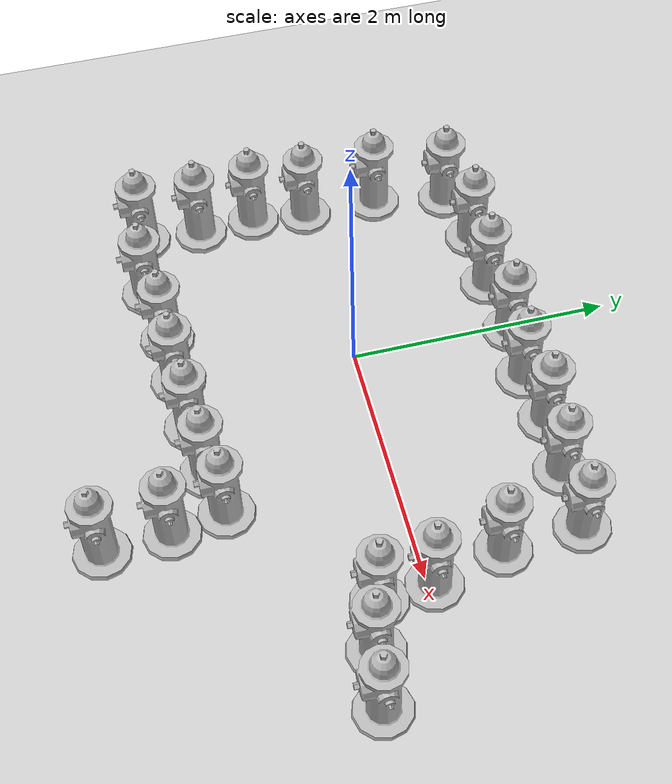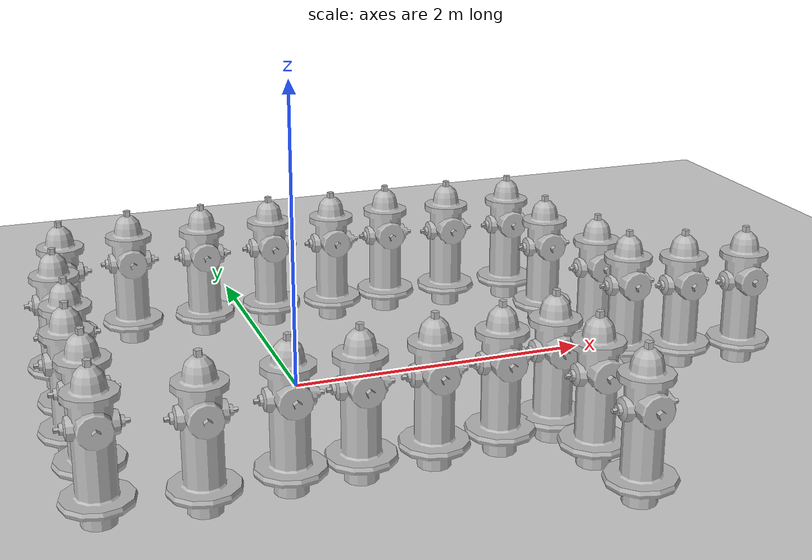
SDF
<sdf version="1.7">
 <world name="default">
  <light name="sun" type="directional">
   <pose>0 0 10 0 -0 0</pose>
   <diffuse>0.8 0.8 0.8 1</diffuse>
   <specular>0.2 0.2 0.2 1</specular>
   <attenuation>
    <range>1000</range>
    <constant>0.9</constant>
    <linear>0.01</linear>
    <quadratic>0.001</quadratic>
   </attenuation>
   <direction>-0.5 0.1 -0.9</direction>
   <spot><inner_angle>0</inner_angle><outer_angle>0</outer_angle><falloff>0</falloff></spot>
  </light>
  <model name="ground_plane">
   <static>1</static>
   <link name="link">
    <collision name="collision">
     <geometry><plane><normal>0 0 1</normal><size>100 100</size></plane></geometry>
     <surface>
      <contact><collide_bitmask>65535</collide_bitmask></contact>
      <friction><ode><mu>100</mu><mu2>50</mu2></ode></friction>
     </surface>
    </collision>
    <visual name="visual">
     <cast_shadows>0</cast_shadows>
     <geometry><plane><normal>0 0 1</normal><size>100 100</size></plane></geometry>
     <material>
      <script><uri>file://media/materials/scripts/gazebo.material</uri><name>Gazebo/Grey</name></script>
     </material>
    </visual>
   </link>
  </model>
  <gravity>0 0 -9.8</gravity>
  <magnetic_field>6e-06 2.3e-05 -4.2e-05</magnetic_field>
  <atmosphere type="adiabatic"/>
  <physics type="ode">
   <max_step_size>0.001</max_step_size>
   <real_time_factor>1</real_time_factor>
   <real_time_update_rate>1000</real_time_update_rate>
  </physics>
  <scene><ambient>0.4 0.4 0.4 1</ambient><background>0.7 0.7 0.7 1</background><shadows>1</shadows></scene>
  <spherical_coordinates>
   <surface_model>EARTH_WGS84</surface_model>
   <latitude_deg>0</latitude_deg>
   <longitude_deg>0</longitude_deg>
   <elevation>0</elevation>
   <heading_deg>0</heading_deg>
  </spherical_coordinates>
  <model name="fire_hydrant">
   <static>1</static>
   <link name="link">
    <collision name="collision">
     <geometry><mesh><uri>model://fire_hydrant/meshes/fire_hydrant.dae</uri></mesh></geometry>
    </collision>
    <visual name="visual">
     <geometry><mesh><uri>model://fire_hydrant/meshes/fire_hydrant.dae</uri></mesh></geometry>
    </visual>
   </link>
   <pose>-1.41925 0.520695 0 0 -0 0</pose>
  </model>
  <model name="fire_hydrant_clone">
   <static>1</static>
   <link name="link">
    <collision name="collision">
     <geometry><mesh><uri>model://fire_hydrant/meshes/fire_hydrant.dae</uri></mesh></geometry>
    </collision>
    <visual name="visual">
     <geometry><mesh><uri>model://fire_hydrant/meshes/fire_hydrant.dae</uri></mesh></geometry>
    </visual>
   </link>
   <pose>-1.41898 -0.054212 0 0 -0 0</pose>
  </model>
  <model name="fire_hydrant_clone_0">
   <static>1</static>
   <link name="link">
    <collision name="collision">
     <geometry><mesh><uri>model://fire_hydrant/meshes/fire_hydrant.dae</uri></mesh></geometry>
    </collision>
    <visual name="visual">
     <geometry><mesh><uri>model://fire_hydrant/meshes/fire_hydrant.dae</uri></mesh></geometry>
    </visual>
   </link>
   <pose>-1.46279 -0.477033 0 0 -0 0</pose>
  </model>
  <model name="fire_hydrant_clone_1">
   <static>1</static>
   <link name="link">
    <collision name="collision">
     <geometry><mesh><uri>model://fire_hydrant/meshes/fire_hydrant.dae</uri></mesh></geometry>
    </collision>
    <visual name="visual">
     <geometry><mesh><uri>model://fire_hydrant/meshes/fire_hydrant.dae</uri></mesh></geometry>
    </visual>
   </link>
   <pose>-1.43241 -0.911625 0 0 -0 0</pose>
  </model>
  <model name="fire_hydrant_clone_2">
   <static>1</static>
   <link name="link">
    <collision name="collision">
     <geometry><mesh><uri>model://fire_hydrant/meshes/fire_hydrant.dae</uri></mesh></geometry>
    </collision>
    <visual name="visual">
     <geometry><mesh><uri>model://fire_hydrant/meshes/fire_hydrant.dae</uri></mesh></geometry>
    </visual>
   </link>
   <pose>-1.45655 -1.36594 0 0 -0 0</pose>
  </model>
  <model name="fire_hydrant_clone_3">
   <static>1</static>
   <link name="link">
    <collision name="collision">
     <geometry><mesh><uri>model://fire_hydrant/meshes/fire_hydrant.dae</uri></mesh></geometry>
    </collision>
    <visual name="visual">
     <geometry><mesh><uri>model://fire_hydrant/meshes/fire_hydrant.dae</uri></mesh></geometry>
    </visual>
   </link>
   <pose>-0.901207 -1.42634 0 0 -0 0</pose>
  </model>
  <model name="fire_hydrant_clone_4">
   <static>1</static>
   <link name="link">
    <collision name="collision">
     <geometry><mesh><uri>model://fire_hydrant/meshes/fire_hydrant.dae</uri></mesh></geometry>
    </collision>
    <visual name="visual">
     <geometry><mesh><uri>model://fire_hydrant/meshes/fire_hydrant.dae</uri></mesh></geometry>
    </visual>
   </link>
   <pose>-0.408915 -1.36242 0 0 -0 0</pose>
  </model>
  <model name="fire_hydrant_clone_5">
   <static>1</static>
   <link name="link">
    <collision name="collision">
     <geometry><mesh><uri>model://fire_hydrant/meshes/fire_hydrant.dae</uri></mesh></geometry>
    </collision>
    <visual name="visual">
     <geometry><mesh><uri>model://fire_hydrant/meshes/fire_hydrant.dae</uri></mesh></geometry>
    </visual>
   </link>
   <pose>-0.000385 -1.35061 0 0 -0 0</pose>
  </model>
  <model name="fire_hydrant_clone_6">
   <static>1</static>
   <link name="link">
    <collision name="collision">
     <geometry><mesh><uri>model://fire_hydrant/meshes/fire_hydrant.dae</uri></mesh></geometry>
    </collision>
    <visual name="visual">
     <geometry><mesh><uri>model://fire_hydrant/meshes/fire_hydrant.dae</uri></mesh></geometry>
    </visual>
   </link>
   <pose>0.442744 -1.32666 0 0 -0 0</pose>
  </model>
  <model name="fire_hydrant_clone_7">
   <static>1</static>
   <link name="link">
    <collision name="collision">
     <geometry><mesh><uri>model://fire_hydrant/meshes/fire_hydrant.dae</uri></mesh></geometry>
    </collision>
    <visual name="visual">
     <geometry><mesh><uri>model://fire_hydrant/meshes/fire_hydrant.dae</uri></mesh></geometry>
    </visual>
   </link>
   <pose>0.865603 -1.28936 0 0 -0 0</pose>
  </model>
  <model name="fire_hydrant_clone_8">
   <static>1</static>
   <link name="link">
    <collision name="collision">
     <geometry><mesh><uri>model://fire_hydrant/meshes/fire_hydrant.dae</uri></mesh></geometry>
    </collision>
    <visual name="visual">
     <geometry><mesh><uri>model://fire_hydrant/meshes/fire_hydrant.dae</uri></mesh></geometry>
    </visual>
   </link>
   <pose>1.22894 -1.22422 0 0 -0 0</pose>
  </model>
  <model name="fire_hydrant_clone_9">
   <static>1</static>
   <link name="link">
    <collision name="collision">
     <geometry><mesh><uri>model://fire_hydrant/meshes/fire_hydrant.dae</uri></mesh></geometry>
    </collision>
    <visual name="visual">
     <geometry><mesh><uri>model://fire_hydrant/meshes/fire_hydrant.dae</uri></mesh></geometry>
    </visual>
   </link>
   <pose>1.30424 -1.6202 0 0 -0 0</pose>
  </model>
  <model name="fire_hydrant_clone_10">
   <static>1</static>
   <link name="link">
    <collision name="collision">
     <geometry><mesh><uri>model://fire_hydrant/meshes/fire_hydrant.dae</uri></mesh></geometry>
    </collision>
    <visual name="visual">
     <geometry><mesh><uri>model://fire_hydrant/meshes/fire_hydrant.dae</uri></mesh></geometry>
    </visual>
   </link>
   <pose>-1.3141 1.08258 0 0 -0 0</pose>
  </model>
  <model name="fire_hydrant_clone_11">
   <static>1</static>
   <link name="link">
    <collision name="collision">
     <geometry><mesh><uri>model://fire_hydrant/meshes/fire_hydrant.dae</uri></mesh></geometry>
    </collision>
    <visual name="visual">
     <geometry><mesh><uri>model://fire_hydrant/meshes/fire_hydrant.dae</uri></mesh></geometry>
    </visual>
   </link>
   <pose>-0.843907 1.17851 0 0 -0 0</pose>
  </model>
  <model name="fire_hydrant_clone_12">
   <static>1</static>
   <link name="link">
    <collision name="collision">
     <geometry><mesh><uri>model://fire_hydrant/meshes/fire_hydrant.dae</uri></mesh></geometry>
    </collision>
    <visual name="visual">
     <geometry><mesh><uri>model://fire_hydrant/meshes/fire_hydrant.dae</uri></mesh></geometry>
    </visual>
   </link>
   <pose>-0.340719 1.15424 0 0 -0 0</pose>
  </model>
  <model name="fire_hydrant_clone_13">
   <static>1</static>
   <link name="link">
    <collision name="collision">
     <geometry><mesh><uri>model://fire_hydrant/meshes/fire_hydrant.dae</uri></mesh></geometry>
    </collision>
    <visual name="visual">
     <geometry><mesh><uri>model://fire_hydrant/meshes/fire_hydrant.dae</uri></mesh></geometry>
    </visual>
   </link>
   <pose>0.150107 1.18831 0 0 -0 0</pose>
  </model>
  <model name="fire_hydrant_clone_14">
   <static>1</static>
   <link name="link">
    <collision name="collision">
     <geometry><mesh><uri>model://fire_hydrant/meshes/fire_hydrant.dae</uri></mesh></geometry>
    </collision>
    <visual name="visual">
     <geometry><mesh><uri>model://fire_hydrant/meshes/fire_hydrant.dae</uri></mesh></geometry>
    </visual>
   </link>
   <pose>0.597257 1.15253 0 0 -0 0</pose>
  </model>
  <model name="fire_hydrant_clone_15">
   <static>1</static>
   <link name="link">
    <collision name="collision">
     <geometry><mesh><uri>model://fire_hydrant/meshes/fire_hydrant.dae</uri></mesh></geometry>
    </collision>
    <visual name="visual">
     <geometry><mesh><uri>model://fire_hydrant/meshes/fire_hydrant.dae</uri></mesh></geometry>
    </visual>
   </link>
   <pose>1.01983 1.19089 0 0 -0 0</pose>
  </model>
  <model name="fire_hydrant_clone_16">
   <static>1</static>
   <link name="link">
    <collision name="collision">
     <geometry><mesh><uri>model://fire_hydrant/meshes/fire_hydrant.dae</uri></mesh></geometry>
    </collision>
    <visual name="visual">
     <geometry><mesh><uri>model://fire_hydrant/meshes/fire_hydrant.dae</uri></mesh></geometry>
    </visual>
   </link>
   <pose>1.48164 1.15401 0 0 -0 0</pose>
  </model>
  <model name="fire_hydrant_clone_17">
   <static>1</static>
   <link name="link">
    <collision name="collision">
     <geometry><mesh><uri>model://fire_hydrant/meshes/fire_hydrant.dae</uri></mesh></geometry>
    </collision>
    <visual name="visual">
     <geometry><mesh><uri>model://fire_hydrant/meshes/fire_hydrant.dae</uri></mesh></geometry>
    </visual>
   </link>
   <pose>1.96129 1.14364 0 0 -0 0</pose>
  </model>
  <model name="fire_hydrant_clone_18">
   <static>1</static>
   <link name="link">
    <collision name="collision">
     <geometry><mesh><uri>model://fire_hydrant/meshes/fire_hydrant.dae</uri></mesh></geometry>
    </collision>
    <visual name="visual">
     <geometry><mesh><uri>model://fire_hydrant/meshes/fire_hydrant.dae</uri></mesh></geometry>
    </visual>
   </link>
   <pose>2 0.558186 0 0 -0 0</pose>
  </model>
  <model name="fire_hydrant_clone_19">
   <static>1</static>
   <link name="link">
    <collision name="collision">
     <geometry><mesh><uri>model://fire_hydrant/meshes/fire_hydrant.dae</uri></mesh></geometry>
    </collision>
    <visual name="visual">
     <geometry><mesh><uri>model://fire_hydrant/meshes/fire_hydrant.dae</uri></mesh></geometry>
    </visual>
   </link>
   <pose>2.14035 0.027047 0 0 -0 0</pose>
  </model>
  <model name="fire_hydrant_clone_20">
   <static>1</static>
   <link name="link">
    <collision name="collision">
     <geometry><mesh><uri>model://fire_hydrant/meshes/fire_hydrant.dae</uri></mesh></geometry>
    </collision>
    <visual name="visual">
     <geometry><mesh><uri>model://fire_hydrant/meshes/fire_hydrant.dae</uri></mesh></geometry>
    </visual>
   </link>
   <pose>2.16973 -0.364702 0 0 -0 0</pose>
  </model>
  <model name="fire_hydrant_clone_21">
   <static>1</static>
   <link name="link">
    <collision name="collision">
     <geometry><mesh><uri>model://fire_hydrant/meshes/fire_hydrant.dae</uri></mesh></geometry>
    </collision>
    <visual name="visual">
     <geometry><mesh><uri>model://fire_hydrant/meshes/fire_hydrant.dae</uri></mesh></geometry>
    </visual>
   </link>
   <pose>2.5184 -0.47684 0 0 -0 0</pose>
  </model>
  <model name="fire_hydrant_clone_22">
   <static>1</static>
   <link name="link">
    <collision name="collision">
     <geometry><mesh><uri>model://fire_hydrant/meshes/fire_hydrant.dae</uri></mesh></geometry>
    </collision>
    <visual name="visual">
     <geometry><mesh><uri>model://fire_hydrant/meshes/fire_hydrant.dae</uri></mesh></geometry>
    </visual>
   </link>
   <pose>2.93528 -0.538519 0 0 -0 0</pose>
  </model>
  <model name="fire_hydrant_clone_23">
   <static>1</static>
   <link name="link">
    <collision name="collision">
     <geometry><mesh><uri>model://fire_hydrant/meshes/fire_hydrant.dae</uri></mesh></geometry>
    </collision>
    <visual name="visual">
     <geometry><mesh><uri>model://fire_hydrant/meshes/fire_hydrant.dae</uri></mesh></geometry>
    </visual>
   </link>
   <pose>1.33259 -2.11187 0 0 -0 0</pose>
  </model>
 </world>
</sdf>
